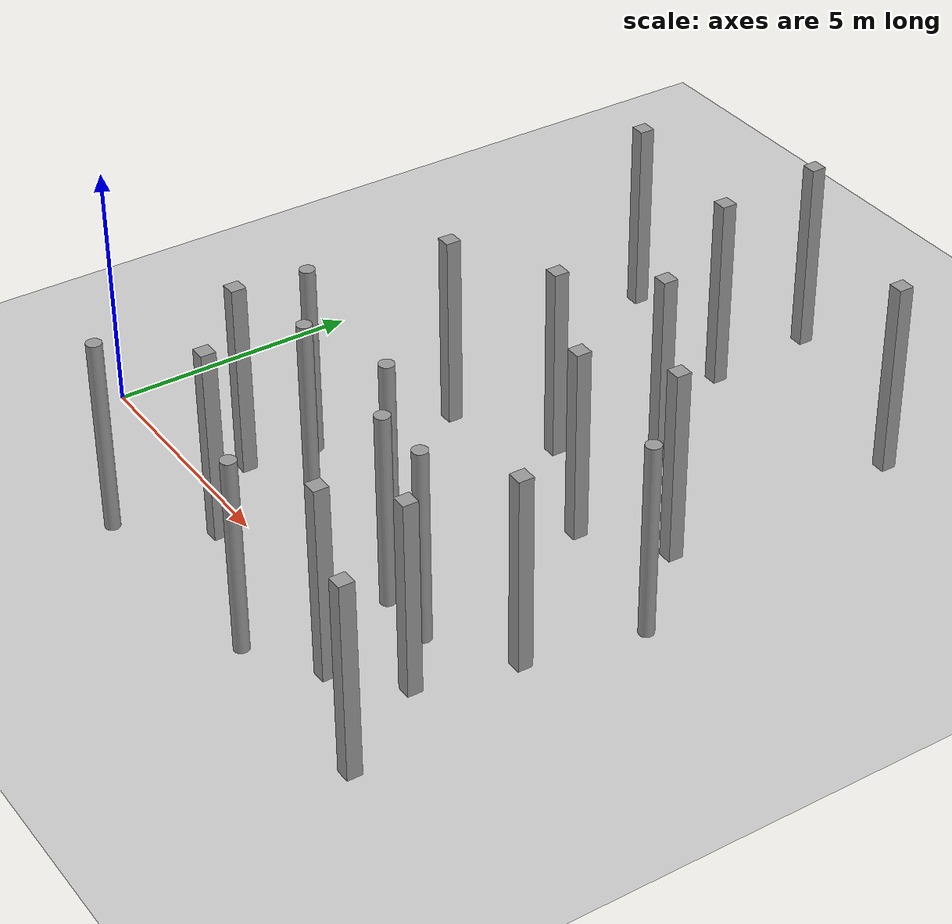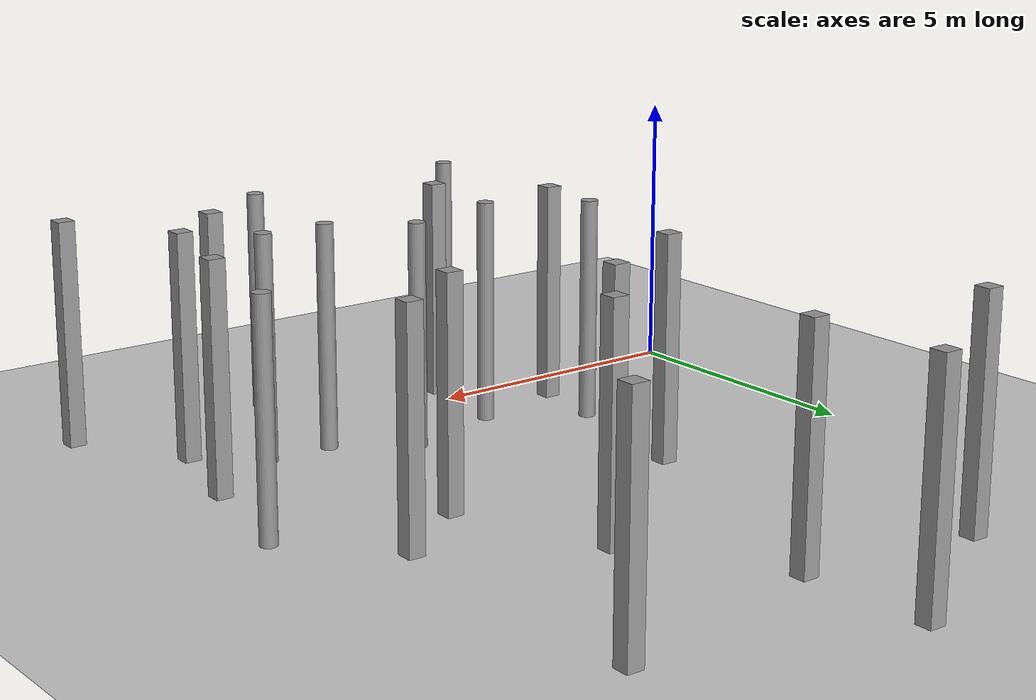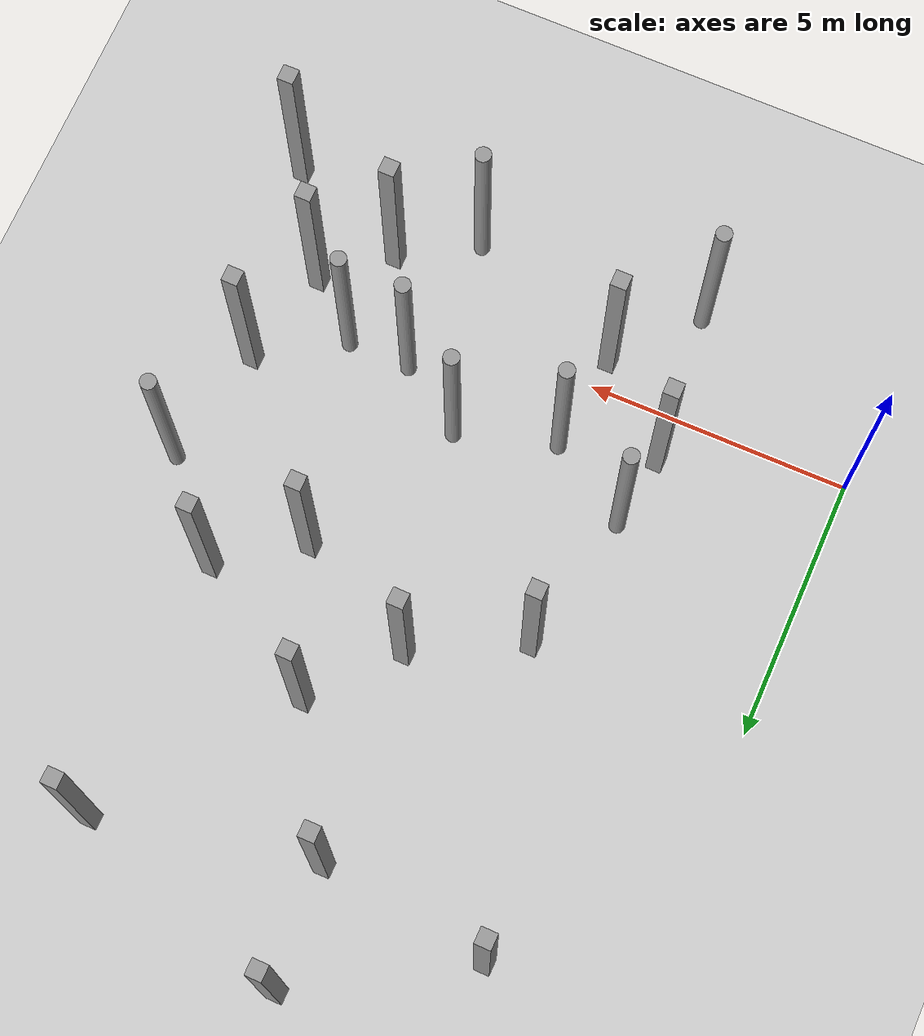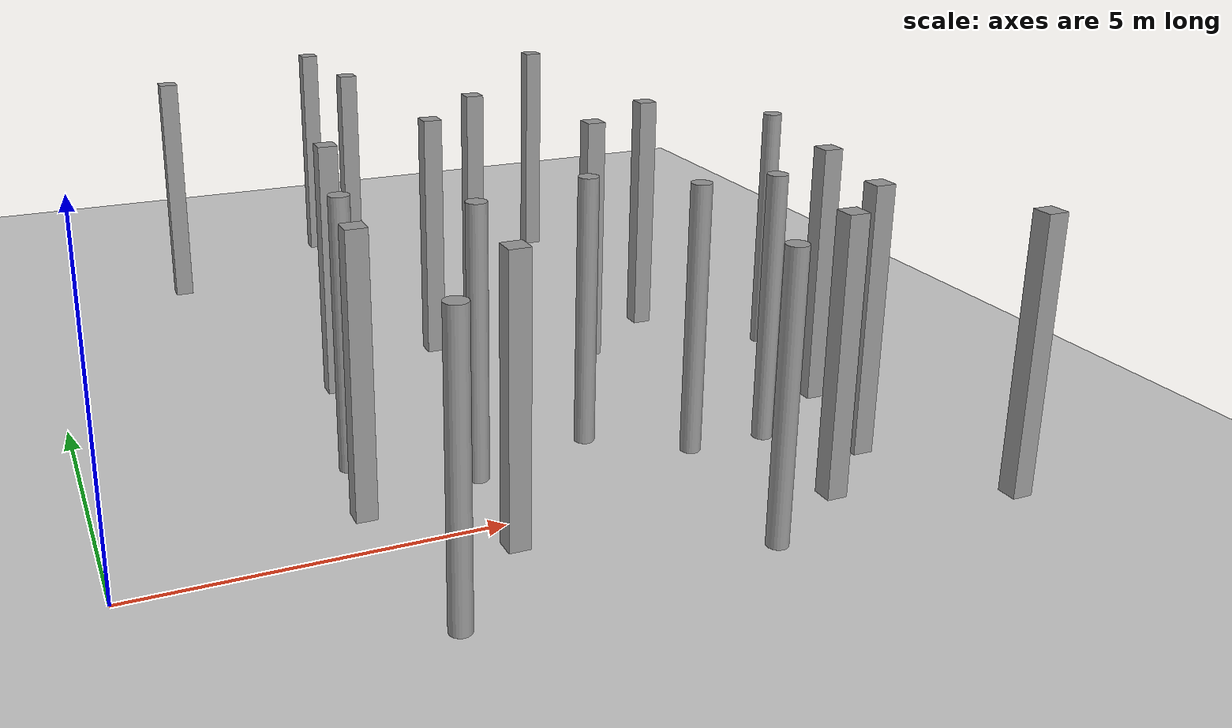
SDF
<sdf version="1.6">
 <world name="default">
  <model name="ground_plane">
   <static>1</static>
   <link name="link">
    <collision name="collision">
     <geometry><plane><normal>0 0 1</normal><size>100 100</size></plane></geometry>
    </collision>
    <visual name="visual">
     <cast_shadows>0</cast_shadows>
     <geometry><plane><normal>0 0 1</normal><size>100 100</size></plane></geometry>
     <material>
      <script><uri>file://media/materials/scripts/gazebo.material</uri><name>Gazebo/Gray</name></script>
     </material>
    </visual>
   </link>
  </model>
  <model name="unit_box_clone_5">
   <link name="link">
    <inertial>
     <mass>1000</mass>
     <inertia><ixx>166.667</ixx><ixy>0</ixy><ixz>0</ixz><iyy>166.667</iyy><iyz>0</iyz><izz>166.667</izz></inertia>
    </inertial>
    <visual name="visual">
     <geometry><box><size>0.3 0.3 4</size></box></geometry>
     <material>
      <script><name>Gazebo/Grey</name><uri>file://media/materials/scripts/gazebo.material</uri></script>
      <shader type="vertex"><normal_map>__default__</normal_map></shader>
      <ambient>0.3 0.3 0.3 1</ambient>
      <diffuse>0.7 0.7 0.7 1</diffuse>
      <specular>0.01 0.01 0.01 1</specular>
      <emissive>0 0 0 1</emissive>
     </material>
    </visual>
    <collision name="collision">
     <geometry><box><size>0.3 0.3 4</size></box></geometry>
     <surface>
      <friction>
       <ode><mu>1</mu><mu2>1</mu2><fdir1>0 0 0</fdir1><slip1>0</slip1><slip2>0</slip2></ode>
       <torsional>
        <coefficient>1</coefficient>
        <patch_radius>0</patch_radius>
        <surface_radius>0</surface_radius>
        <use_patch_radius>1</use_patch_radius>
        <ode><slip>0</slip></ode>
       </torsional>
      </friction>
      <bounce><restitution_coefficient>0</restitution_coefficient><threshold>1e+06</threshold></bounce>
      <contact>
       <collide_without_contact>0</collide_without_contact>
       <collide_without_contact_bitmask>1</collide_without_contact_bitmask>
       <collide_bitmask>1</collide_bitmask>
       <ode>
        <soft_cfm>0</soft_cfm>
        <soft_erp>0.2</soft_erp>
        <kp>1e+13</kp>
        <kd>1</kd>
        <max_vel>0.01</max_vel>
        <min_depth>0</min_depth>
       </ode>
       <bullet>
        <split_impulse>1</split_impulse>
        <split_impulse_penetration_threshold>-0.01</split_impulse_penetration_threshold>
        <soft_cfm>0</soft_cfm>
        <soft_erp>0.2</soft_erp>
        <kp>1e+13</kp>
        <kd>1</kd>
       </bullet>
      </contact>
     </surface>
    </collision>
   </link>
   <static>0</static>
   <pose>3.35409 0.911811 2 0 1e-06 -0.009543</pose>
  </model>
  <model name="unit_box_clone_6">
   <link name="link">
    <inertial>
     <mass>1000</mass>
     <inertia><ixx>166.667</ixx><ixy>0</ixy><ixz>0</ixz><iyy>166.667</iyy><iyz>0</iyz><izz>166.667</izz></inertia>
    </inertial>
    <visual name="visual">
     <geometry><box><size>0.3 0.3 4</size></box></geometry>
     <material>
      <script><name>Gazebo/Grey</name><uri>file://media/materials/scripts/gazebo.material</uri></script>
      <shader type="vertex"><normal_map>__default__</normal_map></shader>
      <ambient>0.3 0.3 0.3 1</ambient>
      <diffuse>0.7 0.7 0.7 1</diffuse>
      <specular>0.01 0.01 0.01 1</specular>
      <emissive>0 0 0 1</emissive>
     </material>
    </visual>
    <collision name="collision">
     <geometry><box><size>0.3 0.3 4</size></box></geometry>
     <surface>
      <friction>
       <ode><mu>1</mu><mu2>1</mu2><fdir1>0 0 0</fdir1><slip1>0</slip1><slip2>0</slip2></ode>
       <torsional>
        <coefficient>1</coefficient>
        <patch_radius>0</patch_radius>
        <surface_radius>0</surface_radius>
        <use_patch_radius>1</use_patch_radius>
        <ode><slip>0</slip></ode>
       </torsional>
      </friction>
      <bounce><restitution_coefficient>0</restitution_coefficient><threshold>1e+06</threshold></bounce>
      <contact>
       <collide_without_contact>0</collide_without_contact>
       <collide_without_contact_bitmask>1</collide_without_contact_bitmask>
       <collide_bitmask>1</collide_bitmask>
       <ode>
        <soft_cfm>0</soft_cfm>
        <soft_erp>0.2</soft_erp>
        <kp>1e+13</kp>
        <kd>1</kd>
        <max_vel>0.01</max_vel>
        <min_depth>0</min_depth>
       </ode>
       <bullet>
        <split_impulse>1</split_impulse>
        <split_impulse_penetration_threshold>-0.01</split_impulse_penetration_threshold>
        <soft_cfm>0</soft_cfm>
        <soft_erp>0.2</soft_erp>
        <kp>1e+13</kp>
        <kd>1</kd>
       </bullet>
      </contact>
     </surface>
    </collision>
   </link>
   <static>0</static>
   <pose>10.5125 0.091586 2.00001 0 7.9e-05 -0.0104</pose>
  </model>
  <model name="unit_box_clone_8">
   <link name="link">
    <inertial>
     <mass>1000</mass>
     <inertia><ixx>166.667</ixx><ixy>0</ixy><ixz>0</ixz><iyy>166.667</iyy><iyz>0</iyz><izz>166.667</izz></inertia>
    </inertial>
    <visual name="visual">
     <geometry><box><size>0.3 0.3 4</size></box></geometry>
     <material>
      <script><name>Gazebo/Grey</name><uri>file://media/materials/scripts/gazebo.material</uri></script>
      <shader type="vertex"><normal_map>__default__</normal_map></shader>
      <ambient>0.3 0.3 0.3 1</ambient>
      <diffuse>0.7 0.7 0.7 1</diffuse>
      <specular>0.01 0.01 0.01 1</specular>
      <emissive>0 0 0 1</emissive>
     </material>
    </visual>
    <collision name="collision">
     <geometry><box><size>0.3 0.3 4</size></box></geometry>
     <surface>
      <friction>
       <ode><mu>1</mu><mu2>1</mu2><fdir1>0 0 0</fdir1><slip1>0</slip1><slip2>0</slip2></ode>
       <torsional>
        <coefficient>1</coefficient>
        <patch_radius>0</patch_radius>
        <surface_radius>0</surface_radius>
        <use_patch_radius>1</use_patch_radius>
        <ode><slip>0</slip></ode>
       </torsional>
      </friction>
      <bounce><restitution_coefficient>0</restitution_coefficient><threshold>1e+06</threshold></bounce>
      <contact>
       <collide_without_contact>0</collide_without_contact>
       <collide_without_contact_bitmask>1</collide_without_contact_bitmask>
       <collide_bitmask>1</collide_bitmask>
       <ode>
        <soft_cfm>0</soft_cfm>
        <soft_erp>0.2</soft_erp>
        <kp>1e+13</kp>
        <kd>1</kd>
        <max_vel>0.01</max_vel>
        <min_depth>0</min_depth>
       </ode>
       <bullet>
        <split_impulse>1</split_impulse>
        <split_impulse_penetration_threshold>-0.01</split_impulse_penetration_threshold>
        <soft_cfm>0</soft_cfm>
        <soft_erp>0.2</soft_erp>
        <kp>1e+13</kp>
        <kd>1</kd>
       </bullet>
      </contact>
     </surface>
    </collision>
   </link>
   <static>0</static>
   <pose>5.86945 10.1035 2.00001 0 -3.9e-05 -0.000838</pose>
  </model>
  <model name="unit_cylinder">
   <link name="link">
    <inertial>
     <mass>1000</mass>
     <inertia><ixx>145.833</ixx><ixy>0</ixy><ixz>0</ixz><iyy>145.833</iyy><iyz>0</iyz><izz>125</izz></inertia>
    </inertial>
    <visual name="visual">
     <geometry><cylinder><radius>0.15</radius><length>4</length></cylinder></geometry>
     <material>
      <script><name>Gazebo/Grey</name><uri>file://media/materials/scripts/gazebo.material</uri></script>
      <shader type="vertex"><normal_map>__default__</normal_map></shader>
      <ambient>0.3 0.3 0.3 1</ambient>
      <diffuse>0.7 0.7 0.7 1</diffuse>
      <specular>0.01 0.01 0.01 1</specular>
      <emissive>0 0 0 1</emissive>
     </material>
    </visual>
    <collision name="collision">
     <geometry><cylinder><radius>0.15</radius><length>4</length></cylinder></geometry>
     <surface>
      <friction>
       <ode><mu>1</mu><mu2>1</mu2><fdir1>0 0 0</fdir1><slip1>0</slip1><slip2>0</slip2></ode>
       <torsional>
        <coefficient>1</coefficient>
        <patch_radius>0</patch_radius>
        <surface_radius>0</surface_radius>
        <use_patch_radius>1</use_patch_radius>
        <ode><slip>0</slip></ode>
       </torsional>
      </friction>
      <bounce><restitution_coefficient>0</restitution_coefficient><threshold>1e+06</threshold></bounce>
      <contact>
       <collide_without_contact>0</collide_without_contact>
       <collide_without_contact_bitmask>1</collide_without_contact_bitmask>
       <collide_bitmask>1</collide_bitmask>
       <ode>
        <soft_cfm>0</soft_cfm>
        <soft_erp>0.2</soft_erp>
        <kp>1e+13</kp>
        <kd>1</kd>
        <max_vel>0.01</max_vel>
        <min_depth>0</min_depth>
       </ode>
       <bullet>
        <split_impulse>1</split_impulse>
        <split_impulse_penetration_threshold>-0.01</split_impulse_penetration_threshold>
        <soft_cfm>0</soft_cfm>
        <soft_erp>0.2</soft_erp>
        <kp>1e+13</kp>
        <kd>1</kd>
       </bullet>
      </contact>
     </surface>
    </collision>
   </link>
   <static>0</static>
   <pose>3.55717 2.30225 1.99998 -1e-06 -0 -0.17477</pose>
  </model>
  <model name="unit_cylinder_clone_4">
   <link name="link">
    <inertial>
     <mass>1000</mass>
     <inertia><ixx>145.833</ixx><ixy>0</ixy><ixz>0</ixz><iyy>145.833</iyy><iyz>0</iyz><izz>125</izz></inertia>
    </inertial>
    <visual name="visual">
     <geometry><cylinder><radius>0.15</radius><length>4</length></cylinder></geometry>
     <material>
      <script><name>Gazebo/Grey</name><uri>file://media/materials/scripts/gazebo.material</uri></script>
      <shader type="vertex"><normal_map>__default__</normal_map></shader>
      <ambient>0.3 0.3 0.3 1</ambient>
      <diffuse>0.7 0.7 0.7 1</diffuse>
      <specular>0.01 0.01 0.01 1</specular>
      <emissive>0 0 0 1</emissive>
     </material>
    </visual>
    <collision name="collision">
     <geometry><cylinder><radius>0.15</radius><length>4</length></cylinder></geometry>
     <surface>
      <friction>
       <ode><mu>1</mu><mu2>1</mu2><fdir1>0 0 0</fdir1><slip1>0</slip1><slip2>0</slip2></ode>
       <torsional>
        <coefficient>1</coefficient>
        <patch_radius>0</patch_radius>
        <surface_radius>0</surface_radius>
        <use_patch_radius>1</use_patch_radius>
        <ode><slip>0</slip></ode>
       </torsional>
      </friction>
      <bounce><restitution_coefficient>0</restitution_coefficient><threshold>1e+06</threshold></bounce>
      <contact>
       <collide_without_contact>0</collide_without_contact>
       <collide_without_contact_bitmask>1</collide_without_contact_bitmask>
       <collide_bitmask>1</collide_bitmask>
       <ode>
        <soft_cfm>0</soft_cfm>
        <soft_erp>0.2</soft_erp>
        <kp>1e+13</kp>
        <kd>1</kd>
        <max_vel>0.01</max_vel>
        <min_depth>0</min_depth>
       </ode>
       <bullet>
        <split_impulse>1</split_impulse>
        <split_impulse_penetration_threshold>-0.01</split_impulse_penetration_threshold>
        <soft_cfm>0</soft_cfm>
        <soft_erp>0.2</soft_erp>
        <kp>1e+13</kp>
        <kd>1</kd>
       </bullet>
      </contact>
     </surface>
    </collision>
   </link>
   <static>0</static>
   <pose>5.12517 1.32746 1.99998 -1e-06 -0 -0.168565</pose>
  </model>
  <model name="unit_cylinder_clone_1_clone_7">
   <link name="link">
    <inertial>
     <mass>1000</mass>
     <inertia><ixx>145.833</ixx><ixy>0</ixy><ixz>0</ixz><iyy>145.833</iyy><iyz>0</iyz><izz>125</izz></inertia>
    </inertial>
    <visual name="visual">
     <geometry><cylinder><radius>0.15</radius><length>4</length></cylinder></geometry>
     <material>
      <script><name>Gazebo/Grey</name><uri>file://media/materials/scripts/gazebo.material</uri></script>
      <shader type="vertex"><normal_map>__default__</normal_map></shader>
      <ambient>0.3 0.3 0.3 1</ambient>
      <diffuse>0.7 0.7 0.7 1</diffuse>
      <specular>0.01 0.01 0.01 1</specular>
      <emissive>0 0 0 1</emissive>
     </material>
    </visual>
    <collision name="collision">
     <geometry><cylinder><radius>0.15</radius><length>4</length></cylinder></geometry>
     <surface>
      <friction>
       <ode><mu>1</mu><mu2>1</mu2><fdir1>0 0 0</fdir1><slip1>0</slip1><slip2>0</slip2></ode>
       <torsional>
        <coefficient>1</coefficient>
        <patch_radius>0</patch_radius>
        <surface_radius>0</surface_radius>
        <use_patch_radius>1</use_patch_radius>
        <ode><slip>0</slip></ode>
       </torsional>
      </friction>
      <bounce><restitution_coefficient>0</restitution_coefficient><threshold>1e+06</threshold></bounce>
      <contact>
       <collide_without_contact>0</collide_without_contact>
       <collide_without_contact_bitmask>1</collide_without_contact_bitmask>
       <collide_bitmask>1</collide_bitmask>
       <ode>
        <soft_cfm>0</soft_cfm>
        <soft_erp>0.2</soft_erp>
        <kp>1e+13</kp>
        <kd>1</kd>
        <max_vel>0.01</max_vel>
        <min_depth>0</min_depth>
       </ode>
       <bullet>
        <split_impulse>1</split_impulse>
        <split_impulse_penetration_threshold>-0.01</split_impulse_penetration_threshold>
        <soft_cfm>0</soft_cfm>
        <soft_erp>0.2</soft_erp>
        <kp>1e+13</kp>
        <kd>1</kd>
       </bullet>
      </contact>
     </surface>
    </collision>
   </link>
   <static>0</static>
   <pose>7.98093 -1.76025 1.99995 -0.000273 -6e-06 -0.814716</pose>
  </model>
  <model name="unit_cylinder_clone_1_clone_22">
   <link name="link">
    <inertial>
     <mass>1000</mass>
     <inertia><ixx>145.833</ixx><ixy>0</ixy><ixz>0</ixz><iyy>145.833</iyy><iyz>0</iyz><izz>125</izz></inertia>
    </inertial>
    <visual name="visual">
     <geometry><cylinder><radius>0.15</radius><length>4</length></cylinder></geometry>
     <material>
      <script><name>Gazebo/Grey</name><uri>file://media/materials/scripts/gazebo.material</uri></script>
      <shader type="vertex"><normal_map>__default__</normal_map></shader>
      <ambient>0.3 0.3 0.3 1</ambient>
      <diffuse>0.7 0.7 0.7 1</diffuse>
      <specular>0.01 0.01 0.01 1</specular>
      <emissive>0 0 0 1</emissive>
     </material>
    </visual>
    <collision name="collision">
     <geometry><cylinder><radius>0.15</radius><length>4</length></cylinder></geometry>
     <surface>
      <friction>
       <ode><mu>1</mu><mu2>1</mu2><fdir1>0 0 0</fdir1><slip1>0</slip1><slip2>0</slip2></ode>
       <torsional>
        <coefficient>1</coefficient>
        <patch_radius>0</patch_radius>
        <surface_radius>0</surface_radius>
        <use_patch_radius>1</use_patch_radius>
        <ode><slip>0</slip></ode>
       </torsional>
      </friction>
      <bounce><restitution_coefficient>0</restitution_coefficient><threshold>1e+06</threshold></bounce>
      <contact>
       <collide_without_contact>0</collide_without_contact>
       <collide_without_contact_bitmask>1</collide_without_contact_bitmask>
       <collide_bitmask>1</collide_bitmask>
       <ode>
        <soft_cfm>0</soft_cfm>
        <soft_erp>0.2</soft_erp>
        <kp>1e+13</kp>
        <kd>1</kd>
        <max_vel>0.01</max_vel>
        <min_depth>0</min_depth>
       </ode>
       <bullet>
        <split_impulse>1</split_impulse>
        <split_impulse_penetration_threshold>-0.01</split_impulse_penetration_threshold>
        <soft_cfm>0</soft_cfm>
        <soft_erp>0.2</soft_erp>
        <kp>1e+13</kp>
        <kd>1</kd>
       </bullet>
      </contact>
     </surface>
    </collision>
   </link>
   <static>0</static>
   <pose>8.27972 1.0122 1.99995 -0.000273 -4e-06 -0.809793</pose>
  </model>
  <model name="unit_cylinder_clone_1_clone_7_clone_1">
   <link name="link">
    <inertial>
     <mass>1000</mass>
     <inertia><ixx>145.833</ixx><ixy>0</ixy><ixz>0</ixz><iyy>145.833</iyy><iyz>0</iyz><izz>125</izz></inertia>
    </inertial>
    <visual name="visual">
     <geometry><cylinder><radius>0.15</radius><length>4</length></cylinder></geometry>
     <material>
      <script><name>Gazebo/Grey</name><uri>file://media/materials/scripts/gazebo.material</uri></script>
      <shader type="vertex"><normal_map>__default__</normal_map></shader>
      <ambient>0.3 0.3 0.3 1</ambient>
      <diffuse>0.7 0.7 0.7 1</diffuse>
      <specular>0.01 0.01 0.01 1</specular>
      <emissive>0 0 0 1</emissive>
     </material>
    </visual>
    <collision name="collision">
     <geometry><cylinder><radius>0.15</radius><length>4</length></cylinder></geometry>
     <surface>
      <friction>
       <ode><mu>1</mu><mu2>1</mu2><fdir1>0 0 0</fdir1><slip1>0</slip1><slip2>0</slip2></ode>
       <torsional>
        <coefficient>1</coefficient>
        <patch_radius>0</patch_radius>
        <surface_radius>0</surface_radius>
        <use_patch_radius>1</use_patch_radius>
        <ode><slip>0</slip></ode>
       </torsional>
      </friction>
      <bounce><restitution_coefficient>0</restitution_coefficient><threshold>1e+06</threshold></bounce>
      <contact>
       <collide_without_contact>0</collide_without_contact>
       <collide_without_contact_bitmask>1</collide_without_contact_bitmask>
       <collide_bitmask>1</collide_bitmask>
       <ode>
        <soft_cfm>0</soft_cfm>
        <soft_erp>0.2</soft_erp>
        <kp>1e+13</kp>
        <kd>1</kd>
        <max_vel>0.01</max_vel>
        <min_depth>0</min_depth>
       </ode>
       <bullet>
        <split_impulse>1</split_impulse>
        <split_impulse_penetration_threshold>-0.01</split_impulse_penetration_threshold>
        <soft_cfm>0</soft_cfm>
        <soft_erp>0.2</soft_erp>
        <kp>1e+13</kp>
        <kd>1</kd>
       </bullet>
      </contact>
     </surface>
    </collision>
   </link>
   <static>0</static>
   <pose>6.99572 1.88319 1.99995 -0.000273 -2e-06 -0.800841</pose>
  </model>
  <model name="unit_cylinder_clone_10">
   <link name="link">
    <inertial>
     <mass>1000</mass>
     <inertia><ixx>145.833</ixx><ixy>0</ixy><ixz>0</ixz><iyy>145.833</iyy><iyz>0</iyz><izz>125</izz></inertia>
    </inertial>
    <visual name="visual">
     <geometry><cylinder><radius>0.15</radius><length>4</length></cylinder></geometry>
     <material>
      <script><name>Gazebo/Grey</name><uri>file://media/materials/scripts/gazebo.material</uri></script>
      <shader type="vertex"><normal_map>__default__</normal_map></shader>
      <ambient>0.3 0.3 0.3 1</ambient>
      <diffuse>0.7 0.7 0.7 1</diffuse>
      <specular>0.01 0.01 0.01 1</specular>
      <emissive>0 0 0 1</emissive>
     </material>
    </visual>
    <collision name="collision">
     <geometry><cylinder><radius>0.15</radius><length>4</length></cylinder></geometry>
     <surface>
      <friction>
       <ode><mu>1</mu><mu2>1</mu2><fdir1>0 0 0</fdir1><slip1>0</slip1><slip2>0</slip2></ode>
       <torsional>
        <coefficient>1</coefficient>
        <patch_radius>0</patch_radius>
        <surface_radius>0</surface_radius>
        <use_patch_radius>1</use_patch_radius>
        <ode><slip>0</slip></ode>
       </torsional>
      </friction>
      <bounce><restitution_coefficient>0</restitution_coefficient><threshold>1e+06</threshold></bounce>
      <contact>
       <collide_without_contact>0</collide_without_contact>
       <collide_without_contact_bitmask>1</collide_without_contact_bitmask>
       <collide_bitmask>1</collide_bitmask>
       <ode>
        <soft_cfm>0</soft_cfm>
        <soft_erp>0.2</soft_erp>
        <kp>1e+13</kp>
        <kd>1</kd>
        <max_vel>0.01</max_vel>
        <min_depth>0</min_depth>
       </ode>
       <bullet>
        <split_impulse>1</split_impulse>
        <split_impulse_penetration_threshold>-0.01</split_impulse_penetration_threshold>
        <soft_cfm>0</soft_cfm>
        <soft_erp>0.2</soft_erp>
        <kp>1e+13</kp>
        <kd>1</kd>
       </bullet>
      </contact>
     </surface>
    </collision>
   </link>
   <static>0</static>
   <pose>9.4798 1.00392 1.99998 -1e-06 1e-06 -0.167847</pose>
  </model>
  <model name="unit_cylinder_clone_11">
   <link name="link">
    <inertial>
     <mass>1000</mass>
     <inertia><ixx>145.833</ixx><ixy>0</ixy><ixz>0</ixz><iyy>145.833</iyy><iyz>0</iyz><izz>125</izz></inertia>
    </inertial>
    <visual name="visual">
     <geometry><cylinder><radius>0.15</radius><length>4</length></cylinder></geometry>
     <material>
      <script><name>Gazebo/Grey</name><uri>file://media/materials/scripts/gazebo.material</uri></script>
      <shader type="vertex"><normal_map>__default__</normal_map></shader>
      <ambient>0.3 0.3 0.3 1</ambient>
      <diffuse>0.7 0.7 0.7 1</diffuse>
      <specular>0.01 0.01 0.01 1</specular>
      <emissive>0 0 0 1</emissive>
     </material>
    </visual>
    <collision name="collision">
     <geometry><cylinder><radius>0.15</radius><length>4</length></cylinder></geometry>
     <surface>
      <friction>
       <ode><mu>1</mu><mu2>1</mu2><fdir1>0 0 0</fdir1><slip1>0</slip1><slip2>0</slip2></ode>
       <torsional>
        <coefficient>1</coefficient>
        <patch_radius>0</patch_radius>
        <surface_radius>0</surface_radius>
        <use_patch_radius>1</use_patch_radius>
        <ode><slip>0</slip></ode>
       </torsional>
      </friction>
      <bounce><restitution_coefficient>0</restitution_coefficient><threshold>1e+06</threshold></bounce>
      <contact>
       <collide_without_contact>0</collide_without_contact>
       <collide_without_contact_bitmask>1</collide_without_contact_bitmask>
       <collide_bitmask>1</collide_bitmask>
       <ode>
        <soft_cfm>0</soft_cfm>
        <soft_erp>0.2</soft_erp>
        <kp>1e+13</kp>
        <kd>1</kd>
        <max_vel>0.01</max_vel>
        <min_depth>0</min_depth>
       </ode>
       <bullet>
        <split_impulse>1</split_impulse>
        <split_impulse_penetration_threshold>-0.01</split_impulse_penetration_threshold>
        <soft_cfm>0</soft_cfm>
        <soft_erp>0.2</soft_erp>
        <kp>1e+13</kp>
        <kd>1</kd>
       </bullet>
      </contact>
     </surface>
    </collision>
   </link>
   <static>0</static>
   <pose>11.4863 4.29723 1.99998 -2e-06 -0 -0.178253</pose>
  </model>
  <model name="unit_cylinder_clone_clone_2">
   <link name="link">
    <inertial>
     <mass>1000</mass>
     <inertia><ixx>145.833</ixx><ixy>0</ixy><ixz>0</ixz><iyy>145.833</iyy><iyz>0</iyz><izz>125</izz></inertia>
    </inertial>
    <visual name="visual">
     <geometry><cylinder><radius>0.15</radius><length>4</length></cylinder></geometry>
     <material>
      <script><name>Gazebo/Grey</name><uri>file://media/materials/scripts/gazebo.material</uri></script>
      <shader type="vertex"><normal_map>__default__</normal_map></shader>
      <ambient>0.3 0.3 0.3 1</ambient>
      <diffuse>0.7 0.7 0.7 1</diffuse>
      <specular>0.01 0.01 0.01 1</specular>
      <emissive>0 0 0 1</emissive>
     </material>
    </visual>
    <collision name="collision">
     <geometry><cylinder><radius>0.15</radius><length>4</length></cylinder></geometry>
     <surface>
      <friction>
       <ode><mu>1</mu><mu2>1</mu2><fdir1>0 0 0</fdir1><slip1>0</slip1><slip2>0</slip2></ode>
       <torsional>
        <coefficient>1</coefficient>
        <patch_radius>0</patch_radius>
        <surface_radius>0</surface_radius>
        <use_patch_radius>1</use_patch_radius>
        <ode><slip>0</slip></ode>
       </torsional>
      </friction>
      <bounce><restitution_coefficient>0</restitution_coefficient><threshold>1e+06</threshold></bounce>
      <contact>
       <collide_without_contact>0</collide_without_contact>
       <collide_without_contact_bitmask>1</collide_without_contact_bitmask>
       <collide_bitmask>1</collide_bitmask>
       <ode>
        <soft_cfm>0</soft_cfm>
        <soft_erp>0.2</soft_erp>
        <kp>1e+13</kp>
        <kd>1</kd>
        <max_vel>0.01</max_vel>
        <min_depth>0</min_depth>
       </ode>
       <bullet>
        <split_impulse>1</split_impulse>
        <split_impulse_penetration_threshold>-0.01</split_impulse_penetration_threshold>
        <soft_cfm>0</soft_cfm>
        <soft_erp>0.2</soft_erp>
        <kp>1e+13</kp>
        <kd>1</kd>
       </bullet>
      </contact>
     </surface>
    </collision>
   </link>
   <static>0</static>
   <pose>3.61566 -2.03101 1.99998 -1e-06 -1e-06 -0.164471</pose>
  </model>
  <model name="unit_box_clone_26_clone_2">
   <link name="link">
    <inertial>
     <mass>1000</mass>
     <inertia><ixx>166.667</ixx><ixy>0</ixy><ixz>0</ixz><iyy>166.667</iyy><iyz>0</iyz><izz>166.667</izz></inertia>
    </inertial>
    <visual name="visual">
     <geometry><box><size>0.3 0.3 4</size></box></geometry>
     <material>
      <script><name>Gazebo/Grey</name><uri>file://media/materials/scripts/gazebo.material</uri></script>
      <shader type="vertex"><normal_map>__default__</normal_map></shader>
      <ambient>0.3 0.3 0.3 1</ambient>
      <diffuse>0.7 0.7 0.7 1</diffuse>
      <specular>0.01 0.01 0.01 1</specular>
      <emissive>0 0 0 1</emissive>
     </material>
    </visual>
    <collision name="collision">
     <geometry><box><size>0.3 0.3 4</size></box></geometry>
     <surface>
      <friction>
       <ode><mu>1</mu><mu2>1</mu2><fdir1>0 0 0</fdir1><slip1>0</slip1><slip2>0</slip2></ode>
       <torsional>
        <coefficient>1</coefficient>
        <patch_radius>0</patch_radius>
        <surface_radius>0</surface_radius>
        <use_patch_radius>1</use_patch_radius>
        <ode><slip>0</slip></ode>
       </torsional>
      </friction>
      <bounce><restitution_coefficient>0</restitution_coefficient><threshold>1e+06</threshold></bounce>
      <contact>
       <collide_without_contact>0</collide_without_contact>
       <collide_without_contact_bitmask>1</collide_without_contact_bitmask>
       <collide_bitmask>1</collide_bitmask>
       <ode>
        <soft_cfm>0</soft_cfm>
        <soft_erp>0.2</soft_erp>
        <kp>1e+13</kp>
        <kd>1</kd>
        <max_vel>0.01</max_vel>
        <min_depth>0</min_depth>
       </ode>
       <bullet>
        <split_impulse>1</split_impulse>
        <split_impulse_penetration_threshold>-0.01</split_impulse_penetration_threshold>
        <soft_cfm>0</soft_cfm>
        <soft_erp>0.2</soft_erp>
        <kp>1e+13</kp>
        <kd>1</kd>
       </bullet>
      </contact>
     </surface>
    </collision>
   </link>
   <static>0</static>
   <pose>4.90463 -0.54229 2.00001 3.4e-05 5e-06 -0.000633</pose>
  </model>
  <model name="unit_box_clone_26_clone_4">
   <link name="link">
    <inertial>
     <mass>1000</mass>
     <inertia><ixx>166.667</ixx><ixy>0</ixy><ixz>0</ixz><iyy>166.667</iyy><iyz>0</iyz><izz>166.667</izz></inertia>
    </inertial>
    <visual name="visual">
     <geometry><box><size>0.3 0.3 4</size></box></geometry>
     <material>
      <script><name>Gazebo/Grey</name><uri>file://media/materials/scripts/gazebo.material</uri></script>
      <shader type="vertex"><normal_map>__default__</normal_map></shader>
      <ambient>0.3 0.3 0.3 1</ambient>
      <diffuse>0.7 0.7 0.7 1</diffuse>
      <specular>0.01 0.01 0.01 1</specular>
      <emissive>0 0 0 1</emissive>
     </material>
    </visual>
    <collision name="collision">
     <geometry><box><size>0.3 0.3 4</size></box></geometry>
     <surface>
      <friction>
       <ode><mu>1</mu><mu2>1</mu2><fdir1>0 0 0</fdir1><slip1>0</slip1><slip2>0</slip2></ode>
       <torsional>
        <coefficient>1</coefficient>
        <patch_radius>0</patch_radius>
        <surface_radius>0</surface_radius>
        <use_patch_radius>1</use_patch_radius>
        <ode><slip>0</slip></ode>
       </torsional>
      </friction>
      <bounce><restitution_coefficient>0</restitution_coefficient><threshold>1e+06</threshold></bounce>
      <contact>
       <collide_without_contact>0</collide_without_contact>
       <collide_without_contact_bitmask>1</collide_without_contact_bitmask>
       <collide_bitmask>1</collide_bitmask>
       <ode>
        <soft_cfm>0</soft_cfm>
        <soft_erp>0.2</soft_erp>
        <kp>1e+13</kp>
        <kd>1</kd>
        <max_vel>0.01</max_vel>
        <min_depth>0</min_depth>
       </ode>
       <bullet>
        <split_impulse>1</split_impulse>
        <split_impulse_penetration_threshold>-0.01</split_impulse_penetration_threshold>
        <soft_cfm>0</soft_cfm>
        <soft_erp>0.2</soft_erp>
        <kp>1e+13</kp>
        <kd>1</kd>
       </bullet>
      </contact>
     </surface>
    </collision>
   </link>
   <static>0</static>
   <pose>9.38021 -0.901307 2 0 1e-06 -0.002743</pose>
  </model>
  <model name="unit_box_clone_26_clone_5">
   <link name="link">
    <inertial>
     <mass>1000</mass>
     <inertia><ixx>166.667</ixx><ixy>0</ixy><ixz>0</ixz><iyy>166.667</iyy><iyz>0</iyz><izz>166.667</izz></inertia>
    </inertial>
    <visual name="visual">
     <geometry><box><size>0.3 0.3 4</size></box></geometry>
     <material>
      <script><name>Gazebo/Grey</name><uri>file://media/materials/scripts/gazebo.material</uri></script>
      <shader type="vertex"><normal_map>__default__</normal_map></shader>
      <ambient>0.3 0.3 0.3 1</ambient>
      <diffuse>0.7 0.7 0.7 1</diffuse>
      <specular>0.01 0.01 0.01 1</specular>
      <emissive>0 0 0 1</emissive>
     </material>
    </visual>
    <collision name="collision">
     <geometry><box><size>0.3 0.3 4</size></box></geometry>
     <surface>
      <friction>
       <ode><mu>1</mu><mu2>1</mu2><fdir1>0 0 0</fdir1><slip1>0</slip1><slip2>0</slip2></ode>
       <torsional>
        <coefficient>1</coefficient>
        <patch_radius>0</patch_radius>
        <surface_radius>0</surface_radius>
        <use_patch_radius>1</use_patch_radius>
        <ode><slip>0</slip></ode>
       </torsional>
      </friction>
      <bounce><restitution_coefficient>0</restitution_coefficient><threshold>1e+06</threshold></bounce>
      <contact>
       <collide_without_contact>0</collide_without_contact>
       <collide_without_contact_bitmask>1</collide_without_contact_bitmask>
       <collide_bitmask>1</collide_bitmask>
       <ode>
        <soft_cfm>0</soft_cfm>
        <soft_erp>0.2</soft_erp>
        <kp>1e+13</kp>
        <kd>1</kd>
        <max_vel>0.01</max_vel>
        <min_depth>0</min_depth>
       </ode>
       <bullet>
        <split_impulse>1</split_impulse>
        <split_impulse_penetration_threshold>-0.01</split_impulse_penetration_threshold>
        <soft_cfm>0</soft_cfm>
        <soft_erp>0.2</soft_erp>
        <kp>1e+13</kp>
        <kd>1</kd>
       </bullet>
      </contact>
     </surface>
    </collision>
   </link>
   <static>0</static>
   <pose>11.7154 -1.81909 2 2e-06 3e-06 0.000349</pose>
  </model>
  <model name="unit_box_clone_22_clone">
   <link name="link">
    <inertial>
     <mass>1000</mass>
     <inertia><ixx>166.667</ixx><ixy>0</ixy><ixz>0</ixz><iyy>166.667</iyy><iyz>0</iyz><izz>166.667</izz></inertia>
    </inertial>
    <visual name="visual">
     <geometry><box><size>0.3 0.3 4</size></box></geometry>
     <material>
      <script><name>Gazebo/Grey</name><uri>file://media/materials/scripts/gazebo.material</uri></script>
      <shader type="vertex"><normal_map>__default__</normal_map></shader>
      <ambient>0.3 0.3 0.3 1</ambient>
      <diffuse>0.7 0.7 0.7 1</diffuse>
      <specular>0.01 0.01 0.01 1</specular>
      <emissive>0 0 0 1</emissive>
     </material>
    </visual>
    <collision name="collision">
     <geometry><box><size>0.3 0.3 4</size></box></geometry>
     <surface>
      <friction>
       <ode><mu>1</mu><mu2>1</mu2><fdir1>0 0 0</fdir1><slip1>0</slip1><slip2>0</slip2></ode>
       <torsional>
        <coefficient>1</coefficient>
        <patch_radius>0</patch_radius>
        <surface_radius>0</surface_radius>
        <use_patch_radius>1</use_patch_radius>
        <ode><slip>0</slip></ode>
       </torsional>
      </friction>
      <bounce><restitution_coefficient>0</restitution_coefficient><threshold>1e+06</threshold></bounce>
      <contact>
       <collide_without_contact>0</collide_without_contact>
       <collide_without_contact_bitmask>1</collide_without_contact_bitmask>
       <collide_bitmask>1</collide_bitmask>
       <ode>
        <soft_cfm>0</soft_cfm>
        <soft_erp>0.2</soft_erp>
        <kp>1e+13</kp>
        <kd>1</kd>
        <max_vel>0.01</max_vel>
        <min_depth>0</min_depth>
       </ode>
       <bullet>
        <split_impulse>1</split_impulse>
        <split_impulse_penetration_threshold>-0.01</split_impulse_penetration_threshold>
        <soft_cfm>0</soft_cfm>
        <soft_erp>0.2</soft_erp>
        <kp>1e+13</kp>
        <kd>1</kd>
       </bullet>
      </contact>
     </surface>
    </collision>
   </link>
   <static>0</static>
   <pose>2.64301 10.536 2 -3e-06 5e-06 -0.018042</pose>
  </model>
  <model name="unit_box_clone_22_clone_0">
   <link name="link">
    <inertial>
     <mass>1000</mass>
     <inertia><ixx>166.667</ixx><ixy>0</ixy><ixz>0</ixz><iyy>166.667</iyy><iyz>0</iyz><izz>166.667</izz></inertia>
    </inertial>
    <visual name="visual">
     <geometry><box><size>0.3 0.3 4</size></box></geometry>
     <material>
      <script><name>Gazebo/Grey</name><uri>file://media/materials/scripts/gazebo.material</uri></script>
      <shader type="vertex"><normal_map>__default__</normal_map></shader>
      <ambient>0.3 0.3 0.3 1</ambient>
      <diffuse>0.7 0.7 0.7 1</diffuse>
      <specular>0.01 0.01 0.01 1</specular>
      <emissive>0 0 0 1</emissive>
     </material>
    </visual>
    <collision name="collision">
     <geometry><box><size>0.3 0.3 4</size></box></geometry>
     <surface>
      <friction>
       <ode><mu>1</mu><mu2>1</mu2><fdir1>0 0 0</fdir1><slip1>0</slip1><slip2>0</slip2></ode>
       <torsional>
        <coefficient>1</coefficient>
        <patch_radius>0</patch_radius>
        <surface_radius>0</surface_radius>
        <use_patch_radius>1</use_patch_radius>
        <ode><slip>0</slip></ode>
       </torsional>
      </friction>
      <bounce><restitution_coefficient>0</restitution_coefficient><threshold>1e+06</threshold></bounce>
      <contact>
       <collide_without_contact>0</collide_without_contact>
       <collide_without_contact_bitmask>1</collide_without_contact_bitmask>
       <collide_bitmask>1</collide_bitmask>
       <ode>
        <soft_cfm>0</soft_cfm>
        <soft_erp>0.2</soft_erp>
        <kp>1e+13</kp>
        <kd>1</kd>
        <max_vel>0.01</max_vel>
        <min_depth>0</min_depth>
       </ode>
       <bullet>
        <split_impulse>1</split_impulse>
        <split_impulse_penetration_threshold>-0.01</split_impulse_penetration_threshold>
        <soft_cfm>0</soft_cfm>
        <soft_erp>0.2</soft_erp>
        <kp>1e+13</kp>
        <kd>1</kd>
       </bullet>
      </contact>
     </surface>
    </collision>
   </link>
   <static>0</static>
   <pose>9.97926 10.9457 2 2.8e-05 2e-06 -0.016915</pose>
  </model>
  <model name="unit_box_clone_22_clone_1">
   <link name="link">
    <inertial>
     <mass>1000</mass>
     <inertia><ixx>166.667</ixx><ixy>0</ixy><ixz>0</ixz><iyy>166.667</iyy><iyz>0</iyz><izz>166.667</izz></inertia>
    </inertial>
    <visual name="visual">
     <geometry><box><size>0.3 0.3 4</size></box></geometry>
     <material>
      <script><name>Gazebo/Grey</name><uri>file://media/materials/scripts/gazebo.material</uri></script>
      <shader type="vertex"><normal_map>__default__</normal_map></shader>
      <ambient>0.3 0.3 0.3 1</ambient>
      <diffuse>0.7 0.7 0.7 1</diffuse>
      <specular>0.01 0.01 0.01 1</specular>
      <emissive>0 0 0 1</emissive>
     </material>
    </visual>
    <collision name="collision">
     <geometry><box><size>0.3 0.3 4</size></box></geometry>
     <surface>
      <friction>
       <ode><mu>1</mu><mu2>1</mu2><fdir1>0 0 0</fdir1><slip1>0</slip1><slip2>0</slip2></ode>
       <torsional>
        <coefficient>1</coefficient>
        <patch_radius>0</patch_radius>
        <surface_radius>0</surface_radius>
        <use_patch_radius>1</use_patch_radius>
        <ode><slip>0</slip></ode>
       </torsional>
      </friction>
      <bounce><restitution_coefficient>0</restitution_coefficient><threshold>1e+06</threshold></bounce>
      <contact>
       <collide_without_contact>0</collide_without_contact>
       <collide_without_contact_bitmask>1</collide_without_contact_bitmask>
       <collide_bitmask>1</collide_bitmask>
       <ode>
        <soft_cfm>0</soft_cfm>
        <soft_erp>0.2</soft_erp>
        <kp>1e+13</kp>
        <kd>1</kd>
        <max_vel>0.01</max_vel>
        <min_depth>0</min_depth>
       </ode>
       <bullet>
        <split_impulse>1</split_impulse>
        <split_impulse_penetration_threshold>-0.01</split_impulse_penetration_threshold>
        <soft_cfm>0</soft_cfm>
        <soft_erp>0.2</soft_erp>
        <kp>1e+13</kp>
        <kd>1</kd>
       </bullet>
      </contact>
     </surface>
    </collision>
   </link>
   <static>0</static>
   <pose>4.10669 5.02697 2.00001 7.5e-05 -1.7e-05 -0.01398</pose>
  </model>
  <model name="unit_box_clone_22_clone_2">
   <link name="link">
    <inertial>
     <mass>1000</mass>
     <inertia><ixx>166.667</ixx><ixy>0</ixy><ixz>0</ixz><iyy>166.667</iyy><iyz>0</iyz><izz>166.667</izz></inertia>
    </inertial>
    <visual name="visual">
     <geometry><box><size>0.3 0.3 4</size></box></geometry>
     <material>
      <script><name>Gazebo/Grey</name><uri>file://media/materials/scripts/gazebo.material</uri></script>
      <shader type="vertex"><normal_map>__default__</normal_map></shader>
      <ambient>0.3 0.3 0.3 1</ambient>
      <diffuse>0.7 0.7 0.7 1</diffuse>
      <specular>0.01 0.01 0.01 1</specular>
      <emissive>0 0 0 1</emissive>
     </material>
    </visual>
    <collision name="collision">
     <geometry><box><size>0.3 0.3 4</size></box></geometry>
     <surface>
      <friction>
       <ode><mu>1</mu><mu2>1</mu2><fdir1>0 0 0</fdir1><slip1>0</slip1><slip2>0</slip2></ode>
       <torsional>
        <coefficient>1</coefficient>
        <patch_radius>0</patch_radius>
        <surface_radius>0</surface_radius>
        <use_patch_radius>1</use_patch_radius>
        <ode><slip>0</slip></ode>
       </torsional>
      </friction>
      <bounce><restitution_coefficient>0</restitution_coefficient><threshold>1e+06</threshold></bounce>
      <contact>
       <collide_without_contact>0</collide_without_contact>
       <collide_without_contact_bitmask>1</collide_without_contact_bitmask>
       <collide_bitmask>1</collide_bitmask>
       <ode>
        <soft_cfm>0</soft_cfm>
        <soft_erp>0.2</soft_erp>
        <kp>1e+13</kp>
        <kd>1</kd>
        <max_vel>0.01</max_vel>
        <min_depth>0</min_depth>
       </ode>
       <bullet>
        <split_impulse>1</split_impulse>
        <split_impulse_penetration_threshold>-0.01</split_impulse_penetration_threshold>
        <soft_cfm>0</soft_cfm>
        <soft_erp>0.2</soft_erp>
        <kp>1e+13</kp>
        <kd>1</kd>
       </bullet>
      </contact>
     </surface>
    </collision>
   </link>
   <static>0</static>
   <pose>8.49665 4.89874 2 5e-06 8e-06 -0.012067</pose>
  </model>
  <model name="unit_box_clone_22_clone_3">
   <link name="link">
    <inertial>
     <mass>1000</mass>
     <inertia><ixx>166.667</ixx><ixy>0</ixy><ixz>0</ixz><iyy>166.667</iyy><iyz>0</iyz><izz>166.667</izz></inertia>
    </inertial>
    <visual name="visual">
     <geometry><box><size>0.3 0.3 4</size></box></geometry>
     <material>
      <script><name>Gazebo/Grey</name><uri>file://media/materials/scripts/gazebo.material</uri></script>
      <shader type="vertex"><normal_map>__default__</normal_map></shader>
      <ambient>0.3 0.3 0.3 1</ambient>
      <diffuse>0.7 0.7 0.7 1</diffuse>
      <specular>0.01 0.01 0.01 1</specular>
      <emissive>0 0 0 1</emissive>
     </material>
    </visual>
    <collision name="collision">
     <geometry><box><size>0.3 0.3 4</size></box></geometry>
     <surface>
      <friction>
       <ode><mu>1</mu><mu2>1</mu2><fdir1>0 0 0</fdir1><slip1>0</slip1><slip2>0</slip2></ode>
       <torsional>
        <coefficient>1</coefficient>
        <patch_radius>0</patch_radius>
        <surface_radius>0</surface_radius>
        <use_patch_radius>1</use_patch_radius>
        <ode><slip>0</slip></ode>
       </torsional>
      </friction>
      <bounce><restitution_coefficient>0</restitution_coefficient><threshold>1e+06</threshold></bounce>
      <contact>
       <collide_without_contact>0</collide_without_contact>
       <collide_without_contact_bitmask>1</collide_without_contact_bitmask>
       <collide_bitmask>1</collide_bitmask>
       <ode>
        <soft_cfm>0</soft_cfm>
        <soft_erp>0.2</soft_erp>
        <kp>1e+13</kp>
        <kd>1</kd>
        <max_vel>0.01</max_vel>
        <min_depth>0</min_depth>
       </ode>
       <bullet>
        <split_impulse>1</split_impulse>
        <split_impulse_penetration_threshold>-0.01</split_impulse_penetration_threshold>
        <soft_cfm>0</soft_cfm>
        <soft_erp>0.2</soft_erp>
        <kp>1e+13</kp>
        <kd>1</kd>
       </bullet>
      </contact>
     </surface>
    </collision>
   </link>
   <static>0</static>
   <pose>5.72138 12.3949 2.00001 4.5e-05 -4e-06 -0.015139</pose>
  </model>
  <model name="unit_box_clone_22_clone_4">
   <link name="link">
    <inertial>
     <mass>1000</mass>
     <inertia><ixx>166.667</ixx><ixy>0</ixy><ixz>0</ixz><iyy>166.667</iyy><iyz>0</iyz><izz>166.667</izz></inertia>
    </inertial>
    <visual name="visual">
     <geometry><box><size>0.3 0.3 4</size></box></geometry>
     <material>
      <script><name>Gazebo/Grey</name><uri>file://media/materials/scripts/gazebo.material</uri></script>
      <shader type="vertex"><normal_map>__default__</normal_map></shader>
      <ambient>0.3 0.3 0.3 1</ambient>
      <diffuse>0.7 0.7 0.7 1</diffuse>
      <specular>0.01 0.01 0.01 1</specular>
      <emissive>0 0 0 1</emissive>
     </material>
    </visual>
    <collision name="collision">
     <geometry><box><size>0.3 0.3 4</size></box></geometry>
     <surface>
      <friction>
       <ode><mu>1</mu><mu2>1</mu2><fdir1>0 0 0</fdir1><slip1>0</slip1><slip2>0</slip2></ode>
       <torsional>
        <coefficient>1</coefficient>
        <patch_radius>0</patch_radius>
        <surface_radius>0</surface_radius>
        <use_patch_radius>1</use_patch_radius>
        <ode><slip>0</slip></ode>
       </torsional>
      </friction>
      <bounce><restitution_coefficient>0</restitution_coefficient><threshold>1e+06</threshold></bounce>
      <contact>
       <collide_without_contact>0</collide_without_contact>
       <collide_without_contact_bitmask>1</collide_without_contact_bitmask>
       <collide_bitmask>1</collide_bitmask>
       <ode>
        <soft_cfm>0</soft_cfm>
        <soft_erp>0.2</soft_erp>
        <kp>1e+13</kp>
        <kd>1</kd>
        <max_vel>0.01</max_vel>
        <min_depth>0</min_depth>
       </ode>
       <bullet>
        <split_impulse>1</split_impulse>
        <split_impulse_penetration_threshold>-0.01</split_impulse_penetration_threshold>
        <soft_cfm>0</soft_cfm>
        <soft_erp>0.2</soft_erp>
        <kp>1e+13</kp>
        <kd>1</kd>
       </bullet>
      </contact>
     </surface>
    </collision>
   </link>
   <static>0</static>
   <pose>9.97951 5.95193 2 -3e-06 4e-06 -0.013193</pose>
  </model>
  <model name="unit_box_clone_22_clone_5">
   <link name="link">
    <inertial>
     <mass>1000</mass>
     <inertia><ixx>166.667</ixx><ixy>0</ixy><ixz>0</ixz><iyy>166.667</iyy><iyz>0</iyz><izz>166.667</izz></inertia>
    </inertial>
    <visual name="visual">
     <geometry><box><size>0.3 0.3 4</size></box></geometry>
     <material>
      <script><name>Gazebo/Grey</name><uri>file://media/materials/scripts/gazebo.material</uri></script>
      <shader type="vertex"><normal_map>__default__</normal_map></shader>
      <ambient>0.3 0.3 0.3 1</ambient>
      <diffuse>0.7 0.7 0.7 1</diffuse>
      <specular>0.01 0.01 0.01 1</specular>
      <emissive>0 0 0 1</emissive>
     </material>
    </visual>
    <collision name="collision">
     <geometry><box><size>0.3 0.3 4</size></box></geometry>
     <surface>
      <friction>
       <ode><mu>1</mu><mu2>1</mu2><fdir1>0 0 0</fdir1><slip1>0</slip1><slip2>0</slip2></ode>
       <torsional>
        <coefficient>1</coefficient>
        <patch_radius>0</patch_radius>
        <surface_radius>0</surface_radius>
        <use_patch_radius>1</use_patch_radius>
        <ode><slip>0</slip></ode>
       </torsional>
      </friction>
      <bounce><restitution_coefficient>0</restitution_coefficient><threshold>1e+06</threshold></bounce>
      <contact>
       <collide_without_contact>0</collide_without_contact>
       <collide_without_contact_bitmask>1</collide_without_contact_bitmask>
       <collide_bitmask>1</collide_bitmask>
       <ode>
        <soft_cfm>0</soft_cfm>
        <soft_erp>0.2</soft_erp>
        <kp>1e+13</kp>
        <kd>1</kd>
        <max_vel>0.01</max_vel>
        <min_depth>0</min_depth>
       </ode>
       <bullet>
        <split_impulse>1</split_impulse>
        <split_impulse_penetration_threshold>-0.01</split_impulse_penetration_threshold>
        <soft_cfm>0</soft_cfm>
        <soft_erp>0.2</soft_erp>
        <kp>1e+13</kp>
        <kd>1</kd>
       </bullet>
      </contact>
     </surface>
    </collision>
   </link>
   <static>0</static>
   <pose>7.42383 7.56365 2 -4e-06 1e-05 -0.015636</pose>
  </model>
  <model name="unit_box_clone_22_clone_6">
   <link name="link">
    <inertial>
     <mass>1000</mass>
     <inertia><ixx>166.667</ixx><ixy>0</ixy><ixz>0</ixz><iyy>166.667</iyy><iyz>0</iyz><izz>166.667</izz></inertia>
    </inertial>
    <visual name="visual">
     <geometry><box><size>0.3 0.3 4</size></box></geometry>
     <material>
      <script><name>Gazebo/Grey</name><uri>file://media/materials/scripts/gazebo.material</uri></script>
      <shader type="vertex"><normal_map>__default__</normal_map></shader>
      <ambient>0.3 0.3 0.3 1</ambient>
      <diffuse>0.7 0.7 0.7 1</diffuse>
      <specular>0.01 0.01 0.01 1</specular>
      <emissive>0 0 0 1</emissive>
     </material>
    </visual>
    <collision name="collision">
     <geometry><box><size>0.3 0.3 4</size></box></geometry>
     <surface>
      <friction>
       <ode><mu>1</mu><mu2>1</mu2><fdir1>0 0 0</fdir1><slip1>0</slip1><slip2>0</slip2></ode>
       <torsional>
        <coefficient>1</coefficient>
        <patch_radius>0</patch_radius>
        <surface_radius>0</surface_radius>
        <use_patch_radius>1</use_patch_radius>
        <ode><slip>0</slip></ode>
       </torsional>
      </friction>
      <bounce><restitution_coefficient>0</restitution_coefficient><threshold>1e+06</threshold></bounce>
      <contact>
       <collide_without_contact>0</collide_without_contact>
       <collide_without_contact_bitmask>1</collide_without_contact_bitmask>
       <collide_bitmask>1</collide_bitmask>
       <ode>
        <soft_cfm>0</soft_cfm>
        <soft_erp>0.2</soft_erp>
        <kp>1e+13</kp>
        <kd>1</kd>
        <max_vel>0.01</max_vel>
        <min_depth>0</min_depth>
       </ode>
       <bullet>
        <split_impulse>1</split_impulse>
        <split_impulse_penetration_threshold>-0.01</split_impulse_penetration_threshold>
        <soft_cfm>0</soft_cfm>
        <soft_erp>0.2</soft_erp>
        <kp>1e+13</kp>
        <kd>1</kd>
       </bullet>
      </contact>
     </surface>
    </collision>
   </link>
   <static>0</static>
   <pose>11 1.99991 2.00001 4.4e-05 0 -0.015771</pose>
  </model>
  <model name="unit_box_clone_22_clone_9">
   <link name="link">
    <inertial>
     <mass>1000</mass>
     <inertia><ixx>166.667</ixx><ixy>0</ixy><ixz>0</ixz><iyy>166.667</iyy><iyz>0</iyz><izz>166.667</izz></inertia>
    </inertial>
    <visual name="visual">
     <geometry><box><size>0.3 0.3 4</size></box></geometry>
     <material>
      <script><name>Gazebo/Grey</name><uri>file://media/materials/scripts/gazebo.material</uri></script>
      <shader type="vertex"><normal_map>__default__</normal_map></shader>
      <ambient>0.3 0.3 0.3 1</ambient>
      <diffuse>0.7 0.7 0.7 1</diffuse>
      <specular>0.01 0.01 0.01 1</specular>
      <emissive>0 0 0 1</emissive>
     </material>
    </visual>
    <collision name="collision">
     <geometry><box><size>0.3 0.3 4</size></box></geometry>
     <surface>
      <friction>
       <ode><mu>1</mu><mu2>1</mu2><fdir1>0 0 0</fdir1><slip1>0</slip1><slip2>0</slip2></ode>
       <torsional>
        <coefficient>1</coefficient>
        <patch_radius>0</patch_radius>
        <surface_radius>0</surface_radius>
        <use_patch_radius>1</use_patch_radius>
        <ode><slip>0</slip></ode>
       </torsional>
      </friction>
      <bounce><restitution_coefficient>0</restitution_coefficient><threshold>1e+06</threshold></bounce>
      <contact>
       <collide_without_contact>0</collide_without_contact>
       <collide_without_contact_bitmask>1</collide_without_contact_bitmask>
       <collide_bitmask>1</collide_bitmask>
       <ode>
        <soft_cfm>0</soft_cfm>
        <soft_erp>0.2</soft_erp>
        <kp>1e+13</kp>
        <kd>1</kd>
        <max_vel>0.01</max_vel>
        <min_depth>0</min_depth>
       </ode>
       <bullet>
        <split_impulse>1</split_impulse>
        <split_impulse_penetration_threshold>-0.01</split_impulse_penetration_threshold>
        <soft_cfm>0</soft_cfm>
        <soft_erp>0.2</soft_erp>
        <kp>1e+13</kp>
        <kd>1</kd>
       </bullet>
      </contact>
     </surface>
    </collision>
   </link>
   <static>0</static>
   <pose>6.12605 6.06574 2 -1e-06 2e-06 -0.015472</pose>
  </model>
 </world>
</sdf>
